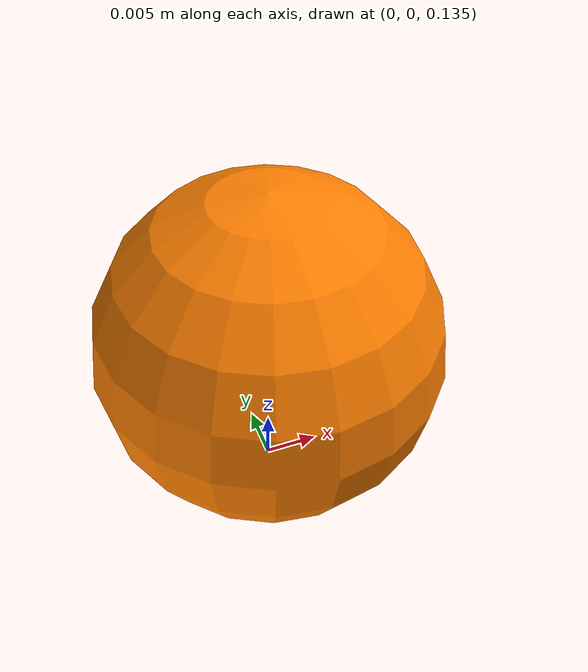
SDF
<?xml version="1.0"?>
<sdf version="1.8">
    <model name="catapaf_ball">
        <pose>0 0 0.15 0 0 0</pose>
        <link name="ball_link">
            <inertial>
                <mass>0.00015</mass>
                <inertia>
                    <ixx>0.000007</ixx>
                    <iyy>0.000007</iyy>
                    <izz>0.000007</izz>
                </inertia>
            </inertial>

            <collision name="collision">
                <geometry>
                    <sphere>
                        <radius>0.015</radius>
                    </sphere>
                </geometry>
                <surface>
                    <friction>
                        <ode>
                            <mu>1.0</mu>
                            <mu2>1.0</mu2>
                            <slip1>0.0</slip1>
                            <slip2>0.0</slip2>
                        </ode>
                    </friction>
                    <bounce>
                        <restitution_coefficient>0.7</restitution_coefficient>
                        <threshold>0.01</threshold>
                    </bounce>
                    <contact>
                        <ode>
                            <kp>1000000.0</kp>
                            <kd>100.0</kd>
                            <max_vel>100.0</max_vel>
                            <min_depth>0.001</min_depth>
                        </ode>
                    </contact>
                </surface>
            </collision>

            <visual name="visual">
                <geometry>
                    <sphere>
                        <radius>0.015</radius>
                    </sphere>
                </geometry>
                <material>
                    <ambient>1 0.5 0 1</ambient>
                    <diffuse>1 0.5 0 1</diffuse>
                    <specular>0.8 0.8 0.8 1</specular>
                </material>
            </visual>
        </link>
    </model>
</sdf>
